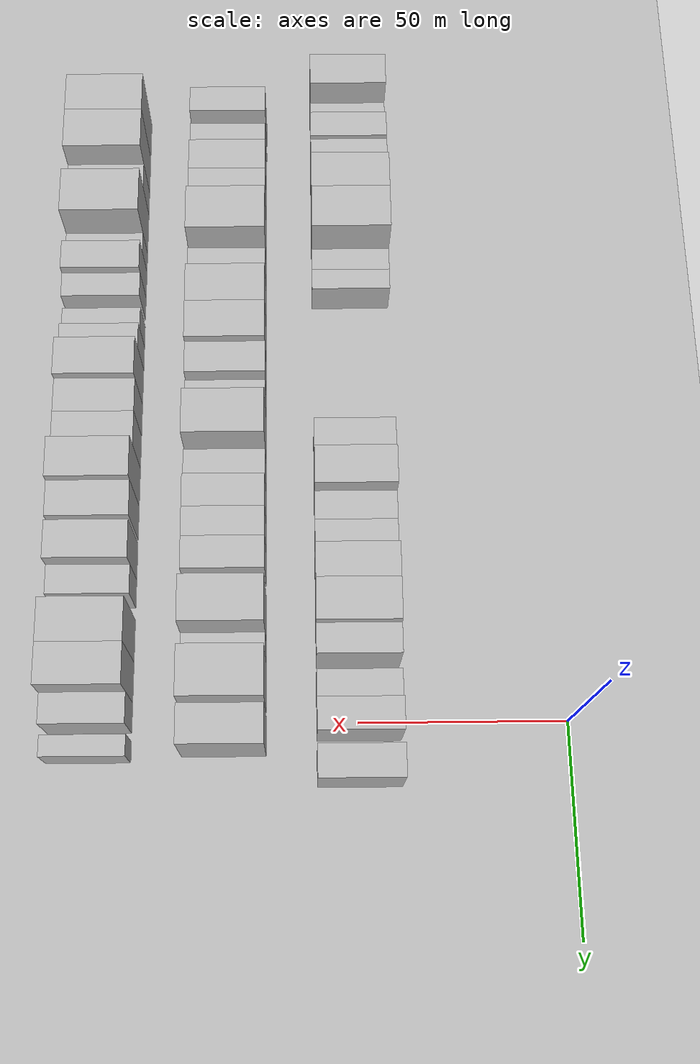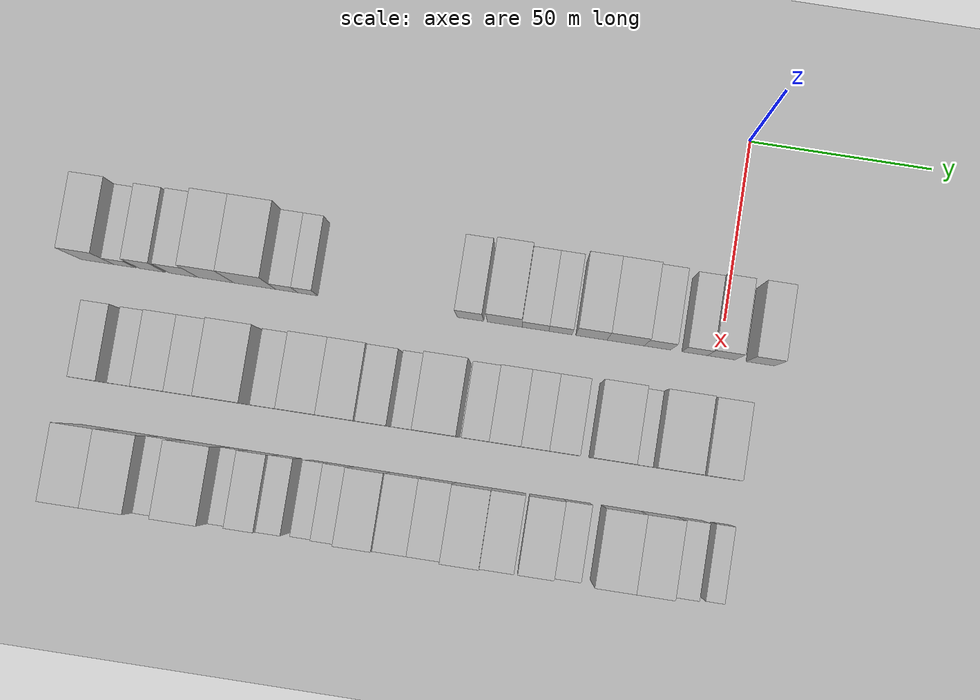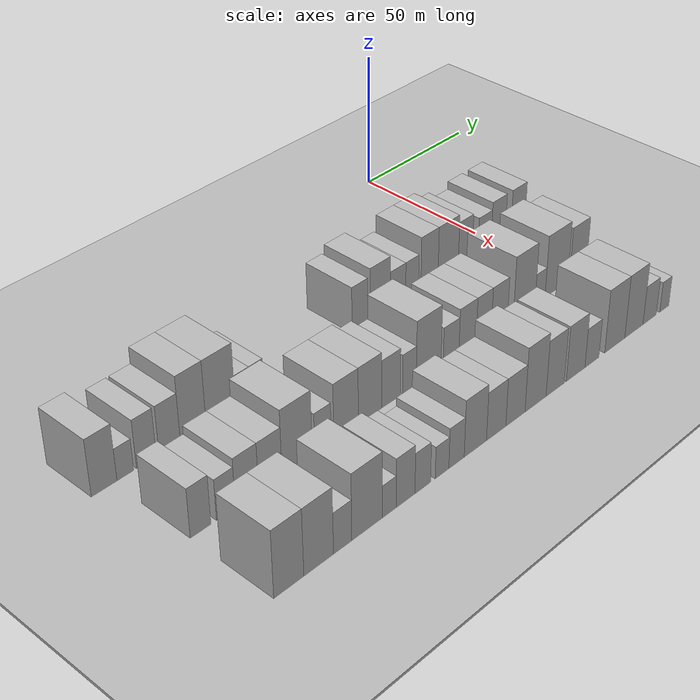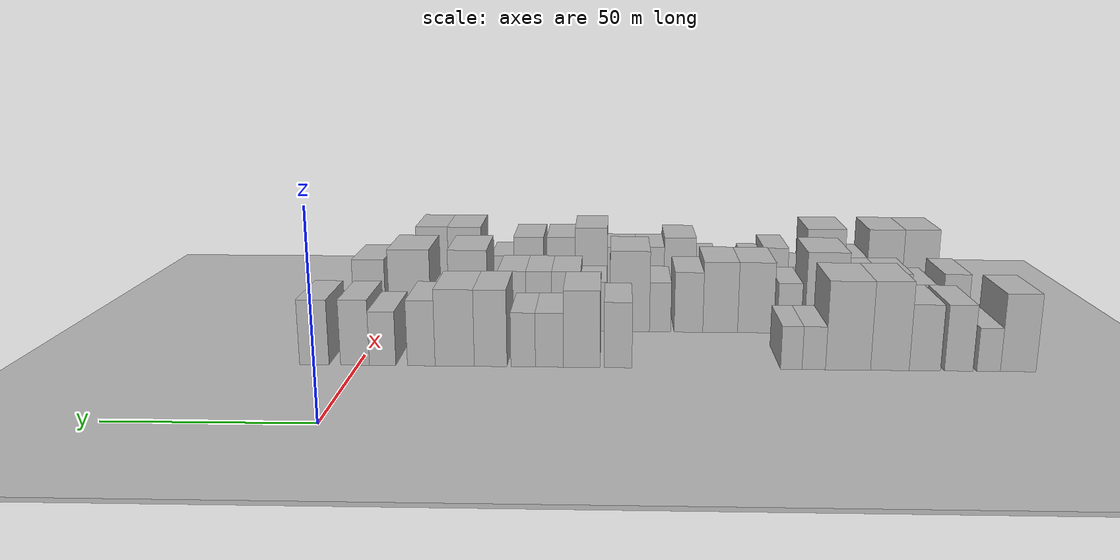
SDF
<sdf version="1.6">
 <world name="default">
  <include><name>ground_plane_1</name><uri>model://HANNAS_ground_plane</uri></include>
  <include>
   <name>ground_plane_2</name>
   <uri>model://HANNAS_ground_plane</uri>
   <pose>100 0 0  0 0 0</pose>
  </include>
  <model name="building_19">
   <static>1</static>
   <pose>50.0000 -170.1867 0 0.000000 0.000000 0.000000</pose>
   <link name="link">
    <pose>0 0 10.50 0 0 0</pose>
    <collision name="collision"><geometry><box><size>20.0000 9.0140 21.0000</size></box></geometry></collision>
    <visual name="visual">
     <cast_shadows>0</cast_shadows>
     <geometry><box><size>20.0000 9.0140 21.0000</size></box></geometry>
     <material>
      <script>
       <uri>model://HANNAS_wall/materials/scripts</uri>
       <uri>model://HANNAS_wall/materials/textures</uri>
       <name>vrc/HANNAS_wall</name>
      </script>
     </material>
    </visual>
   </link>
  </model>
  <model name="building_20">
   <static>1</static>
   <pose>50.0000 -162.6998 0 0.000000 0.000000 0.000000</pose>
   <link name="link">
    <pose>0 0 6.00 0 0 0</pose>
    <collision name="collision"><geometry><box><size>20.0000 5.9597 12.0000</size></box></geometry></collision>
    <visual name="visual">
     <cast_shadows>0</cast_shadows>
     <geometry><box><size>20.0000 5.9597 12.0000</size></box></geometry>
     <material>
      <script>
       <uri>model://HANNAS_wall/materials/scripts</uri>
       <uri>model://HANNAS_wall/materials/textures</uri>
       <name>vrc/HANNAS_wall</name>
      </script>
     </material>
    </visual>
   </link>
  </model>
  <model name="building_21">
   <static>1</static>
   <pose>50.0000 -155.1052 0 0.000000 0.000000 0.000000</pose>
   <link name="link">
    <pose>0 0 9.00 0 0 0</pose>
    <collision name="collision"><geometry><box><size>20.0000 7.2296 18.0000</size></box></geometry></collision>
    <visual name="visual">
     <cast_shadows>0</cast_shadows>
     <geometry><box><size>20.0000 7.2296 18.0000</size></box></geometry>
     <material>
      <script>
       <uri>model://HANNAS_wall/materials/scripts</uri>
       <uri>model://HANNAS_wall/materials/textures</uri>
       <name>vrc/HANNAS_wall</name>
      </script>
     </material>
    </visual>
   </link>
  </model>
  <model name="building_22">
   <static>1</static>
   <pose>50.0000 -146.5102 0 0.000000 0.000000 0.000000</pose>
   <link name="link">
    <pose>0 0 9.00 0 0 0</pose>
    <collision name="collision"><geometry><box><size>20.0000 7.9605 18.0000</size></box></geometry></collision>
    <visual name="visual">
     <cast_shadows>0</cast_shadows>
     <geometry><box><size>20.0000 7.9605 18.0000</size></box></geometry>
     <material>
      <script>
       <uri>model://HANNAS_wall/materials/scripts</uri>
       <uri>model://HANNAS_wall/materials/textures</uri>
       <name>vrc/HANNAS_wall</name>
      </script>
     </material>
    </visual>
   </link>
  </model>
  <model name="building_23">
   <static>1</static>
   <pose>50.0000 -137.6101 0 0.000000 0.000000 0.000000</pose>
   <link name="link">
    <pose>0 0 12.00 0 0 0</pose>
    <collision name="collision"><geometry><box><size>20.0000 9.8397 24.0000</size></box></geometry></collision>
    <visual name="visual">
     <cast_shadows>0</cast_shadows>
     <geometry><box><size>20.0000 9.8397 24.0000</size></box></geometry>
     <material>
      <script>
       <uri>model://HANNAS_wall/materials/scripts</uri>
       <uri>model://HANNAS_wall/materials/textures</uri>
       <name>vrc/HANNAS_wall</name>
      </script>
     </material>
    </visual>
   </link>
  </model>
  <model name="building_24">
   <static>1</static>
   <pose>50.0000 -126.9382 0 0.000000 0.000000 0.000000</pose>
   <link name="link">
    <pose>0 0 12.00 0 0 0</pose>
    <collision name="collision"><geometry><box><size>20.0000 11.5041 24.0000</size></box></geometry></collision>
    <visual name="visual">
     <cast_shadows>0</cast_shadows>
     <geometry><box><size>20.0000 11.5041 24.0000</size></box></geometry>
     <material>
      <script>
       <uri>model://HANNAS_wall/materials/scripts</uri>
       <uri>model://HANNAS_wall/materials/textures</uri>
       <name>vrc/HANNAS_wall</name>
      </script>
     </material>
    </visual>
   </link>
  </model>
  <model name="building_25">
   <static>1</static>
   <pose>50.0000 -118.1877 0 0.000000 0.000000 0.000000</pose>
   <link name="link">
    <pose>0 0 6.00 0 0 0</pose>
    <collision name="collision"><geometry><box><size>20.0000 5.9968 12.0000</size></box></geometry></collision>
    <visual name="visual">
     <cast_shadows>0</cast_shadows>
     <geometry><box><size>20.0000 5.9968 12.0000</size></box></geometry>
     <material>
      <script>
       <uri>model://HANNAS_wall/materials/scripts</uri>
       <uri>model://HANNAS_wall/materials/textures</uri>
       <name>vrc/HANNAS_wall</name>
      </script>
     </material>
    </visual>
   </link>
  </model>
  <model name="building_26">
   <static>1</static>
   <pose>50.0000 -112.4463 0 0.000000 0.000000 0.000000</pose>
   <link name="link">
    <pose>0 0 6.00 0 0 0</pose>
    <collision name="collision"><geometry><box><size>20.0000 5.4861 12.0000</size></box></geometry></collision>
    <visual name="visual">
     <cast_shadows>0</cast_shadows>
     <geometry><box><size>20.0000 5.4861 12.0000</size></box></geometry>
     <material>
      <script>
       <uri>model://HANNAS_wall/materials/scripts</uri>
       <uri>model://HANNAS_wall/materials/textures</uri>
       <name>vrc/HANNAS_wall</name>
      </script>
     </material>
    </visual>
   </link>
  </model>
  <model name="building_27">
   <static>1</static>
   <pose>50.0000 -67.8716 0 0.000000 0.000000 0.000000</pose>
   <link name="link">
    <pose>0 0 9.00 0 0 0</pose>
    <collision name="collision"><geometry><box><size>20.0000 7.2211 18.0000</size></box></geometry></collision>
    <visual name="visual">
     <cast_shadows>0</cast_shadows>
     <geometry><box><size>20.0000 7.2211 18.0000</size></box></geometry>
     <material>
      <script>
       <uri>model://HANNAS_wall/materials/scripts</uri>
       <uri>model://HANNAS_wall/materials/textures</uri>
       <name>vrc/HANNAS_wall</name>
      </script>
     </material>
    </visual>
   </link>
  </model>
  <model name="building_28">
   <static>1</static>
   <pose>50.0000 -58.4912 0 0.000000 0.000000 0.000000</pose>
   <link name="link">
    <pose>0 0 10.50 0 0 0</pose>
    <collision name="collision"><geometry><box><size>20.0000 9.5399 21.0000</size></box></geometry></collision>
    <visual name="visual">
     <cast_shadows>0</cast_shadows>
     <geometry><box><size>20.0000 9.5399 21.0000</size></box></geometry>
     <material>
      <script>
       <uri>model://HANNAS_wall/materials/scripts</uri>
       <uri>model://HANNAS_wall/materials/textures</uri>
       <name>vrc/HANNAS_wall</name>
      </script>
     </material>
    </visual>
   </link>
  </model>
  <model name="building_29">
   <static>1</static>
   <pose>50.0000 -50.1089 0 0.000000 0.000000 0.000000</pose>
   <link name="link">
    <pose>0 0 7.50 0 0 0</pose>
    <collision name="collision"><geometry><box><size>20.0000 7.2247 15.0000</size></box></geometry></collision>
    <visual name="visual">
     <cast_shadows>0</cast_shadows>
     <geometry><box><size>20.0000 7.2247 15.0000</size></box></geometry>
     <material>
      <script>
       <uri>model://HANNAS_wall/materials/scripts</uri>
       <uri>model://HANNAS_wall/materials/textures</uri>
       <name>vrc/HANNAS_wall</name>
      </script>
     </material>
    </visual>
   </link>
  </model>
  <model name="building_30">
   <static>1</static>
   <pose>50.0000 -43.3192 0 0.000000 0.000000 0.000000</pose>
   <link name="link">
    <pose>0 0 7.50 0 0 0</pose>
    <collision name="collision"><geometry><box><size>20.0000 6.3545 15.0000</size></box></geometry></collision>
    <visual name="visual">
     <cast_shadows>0</cast_shadows>
     <geometry><box><size>20.0000 6.3545 15.0000</size></box></geometry>
     <material>
      <script>
       <uri>model://HANNAS_wall/materials/scripts</uri>
       <uri>model://HANNAS_wall/materials/textures</uri>
       <name>vrc/HANNAS_wall</name>
      </script>
     </material>
    </visual>
   </link>
  </model>
  <model name="building_31">
   <static>1</static>
   <pose>50.0000 -34.8919 0 0.000000 0.000000 0.000000</pose>
   <link name="link">
    <pose>0 0 10.50 0 0 0</pose>
    <collision name="collision"><geometry><box><size>20.0000 8.5002 21.0000</size></box></geometry></collision>
    <visual name="visual">
     <cast_shadows>0</cast_shadows>
     <geometry><box><size>20.0000 8.5002 21.0000</size></box></geometry>
     <material>
      <script>
       <uri>model://HANNAS_wall/materials/scripts</uri>
       <uri>model://HANNAS_wall/materials/textures</uri>
       <name>vrc/HANNAS_wall</name>
      </script>
     </material>
    </visual>
   </link>
  </model>
  <model name="building_32">
   <static>1</static>
   <pose>50.0000 -25.5325 0 0.000000 0.000000 0.000000</pose>
   <link name="link">
    <pose>0 0 10.50 0 0 0</pose>
    <collision name="collision"><geometry><box><size>20.0000 10.2185 21.0000</size></box></geometry></collision>
    <visual name="visual">
     <cast_shadows>0</cast_shadows>
     <geometry><box><size>20.0000 10.2185 21.0000</size></box></geometry>
     <material>
      <script>
       <uri>model://HANNAS_wall/materials/scripts</uri>
       <uri>model://HANNAS_wall/materials/textures</uri>
       <name>vrc/HANNAS_wall</name>
      </script>
     </material>
    </visual>
   </link>
  </model>
  <model name="building_33">
   <static>1</static>
   <pose>50.0000 -16.8051 0 0.000000 0.000000 0.000000</pose>
   <link name="link">
    <pose>0 0 9.00 0 0 0</pose>
    <collision name="collision"><geometry><box><size>20.0000 7.2364 18.0000</size></box></geometry></collision>
    <visual name="visual">
     <cast_shadows>0</cast_shadows>
     <geometry><box><size>20.0000 7.2364 18.0000</size></box></geometry>
     <material>
      <script>
       <uri>model://HANNAS_wall/materials/scripts</uri>
       <uri>model://HANNAS_wall/materials/textures</uri>
       <name>vrc/HANNAS_wall</name>
      </script>
     </material>
    </visual>
   </link>
  </model>
  <model name="building_34">
   <static>1</static>
   <pose>50.0000 -6.7239 0 0.000000 0.000000 0.000000</pose>
   <link name="link">
    <pose>0 0 7.50 0 0 0</pose>
    <collision name="collision"><geometry><box><size>20.0000 6.9261 15.0000</size></box></geometry></collision>
    <visual name="visual">
     <cast_shadows>0</cast_shadows>
     <geometry><box><size>20.0000 6.9261 15.0000</size></box></geometry>
     <material>
      <script>
       <uri>model://HANNAS_wall/materials/scripts</uri>
       <uri>model://HANNAS_wall/materials/textures</uri>
       <name>vrc/HANNAS_wall</name>
      </script>
     </material>
    </visual>
   </link>
  </model>
  <model name="building_35">
   <static>1</static>
   <pose>50.0000 0.5221 0 0.000000 0.000000 0.000000</pose>
   <link name="link">
    <pose>0 0 9.00 0 0 0</pose>
    <collision name="collision"><geometry><box><size>20.0000 7.5658 18.0000</size></box></geometry></collision>
    <visual name="visual">
     <cast_shadows>0</cast_shadows>
     <geometry><box><size>20.0000 7.5658 18.0000</size></box></geometry>
     <material>
      <script>
       <uri>model://HANNAS_wall/materials/scripts</uri>
       <uri>model://HANNAS_wall/materials/textures</uri>
       <name>vrc/HANNAS_wall</name>
      </script>
     </material>
    </visual>
   </link>
  </model>
  <model name="building_36">
   <static>1</static>
   <pose>50.0000 11.1722 0 0.000000 0.000000 0.000000</pose>
   <link name="link">
    <pose>0 0 9.00 0 0 0</pose>
    <collision name="collision"><geometry><box><size>20.0000 7.7345 18.0000</size></box></geometry></collision>
    <visual name="visual">
     <cast_shadows>0</cast_shadows>
     <geometry><box><size>20.0000 7.7345 18.0000</size></box></geometry>
     <material>
      <script>
       <uri>model://HANNAS_wall/materials/scripts</uri>
       <uri>model://HANNAS_wall/materials/textures</uri>
       <name>vrc/HANNAS_wall</name>
      </script>
     </material>
    </visual>
   </link>
  </model>
  <model name="building_93">
   <static>1</static>
   <pose>82.0000 -163.1532 0 0.000000 0.000000 0.000000</pose>
   <link name="link">
    <pose>0 0 9.00 0 0 0</pose>
    <collision name="collision"><geometry><box><size>20.0000 7.3588 18.0000</size></box></geometry></collision>
    <visual name="visual">
     <cast_shadows>0</cast_shadows>
     <geometry><box><size>20.0000 7.3588 18.0000</size></box></geometry>
     <material>
      <script>
       <uri>model://HANNAS_wall/materials/scripts</uri>
       <uri>model://HANNAS_wall/materials/textures</uri>
       <name>vrc/HANNAS_wall</name>
      </script>
     </material>
    </visual>
   </link>
  </model>
  <model name="building_94">
   <static>1</static>
   <pose>82.0000 -154.0242 0 0.000000 0.000000 0.000000</pose>
   <link name="link">
    <pose>0 0 7.50 0 0 0</pose>
    <collision name="collision"><geometry><box><size>20.0000 6.8991 15.0000</size></box></geometry></collision>
    <visual name="visual">
     <cast_shadows>0</cast_shadows>
     <geometry><box><size>20.0000 6.8991 15.0000</size></box></geometry>
     <material>
      <script>
       <uri>model://HANNAS_wall/materials/scripts</uri>
       <uri>model://HANNAS_wall/materials/textures</uri>
       <name>vrc/HANNAS_wall</name>
      </script>
     </material>
    </visual>
   </link>
  </model>
  <model name="building_95">
   <static>1</static>
   <pose>82.0000 -146.2384 0 0.000000 0.000000 0.000000</pose>
   <link name="link">
    <pose>0 0 9.00 0 0 0</pose>
    <collision name="collision"><geometry><box><size>20.0000 8.6725 18.0000</size></box></geometry></collision>
    <visual name="visual">
     <cast_shadows>0</cast_shadows>
     <geometry><box><size>20.0000 8.6725 18.0000</size></box></geometry>
     <material>
      <script>
       <uri>model://HANNAS_wall/materials/scripts</uri>
       <uri>model://HANNAS_wall/materials/textures</uri>
       <name>vrc/HANNAS_wall</name>
      </script>
     </material>
    </visual>
   </link>
  </model>
  <model name="building_96">
   <static>1</static>
   <pose>82.0000 -137.4107 0 0.000000 0.000000 0.000000</pose>
   <link name="link">
    <pose>0 0 9.00 0 0 0</pose>
    <collision name="collision"><geometry><box><size>20.0000 8.9829 18.0000</size></box></geometry></collision>
    <visual name="visual">
     <cast_shadows>0</cast_shadows>
     <geometry><box><size>20.0000 8.9829 18.0000</size></box></geometry>
     <material>
      <script>
       <uri>model://HANNAS_wall/materials/scripts</uri>
       <uri>model://HANNAS_wall/materials/textures</uri>
       <name>vrc/HANNAS_wall</name>
      </script>
     </material>
    </visual>
   </link>
  </model>
  <model name="building_97">
   <static>1</static>
   <pose>82.0000 -126.9958 0 0.000000 0.000000 0.000000</pose>
   <link name="link">
    <pose>0 0 12.00 0 0 0</pose>
    <collision name="collision"><geometry><box><size>20.0000 11.8469 24.0000</size></box></geometry></collision>
    <visual name="visual">
     <cast_shadows>0</cast_shadows>
     <geometry><box><size>20.0000 11.8469 24.0000</size></box></geometry>
     <material>
      <script>
       <uri>model://HANNAS_wall/materials/scripts</uri>
       <uri>model://HANNAS_wall/materials/textures</uri>
       <name>vrc/HANNAS_wall</name>
      </script>
     </material>
    </visual>
   </link>
  </model>
  <model name="building_98">
   <static>1</static>
   <pose>82.0000 -116.7042 0 0.000000 0.000000 0.000000</pose>
   <link name="link">
    <pose>0 0 7.50 0 0 0</pose>
    <collision name="collision"><geometry><box><size>20.0000 6.7363 15.0000</size></box></geometry></collision>
    <visual name="visual">
     <cast_shadows>0</cast_shadows>
     <geometry><box><size>20.0000 6.7363 15.0000</size></box></geometry>
     <material>
      <script>
       <uri>model://HANNAS_wall/materials/scripts</uri>
       <uri>model://HANNAS_wall/materials/textures</uri>
       <name>vrc/HANNAS_wall</name>
      </script>
     </material>
    </visual>
   </link>
  </model>
  <model name="building_99">
   <static>1</static>
   <pose>82.0000 -107.2248 0 0.000000 0.000000 0.000000</pose>
   <link name="link">
    <pose>0 0 10.50 0 0 0</pose>
    <collision name="collision"><geometry><box><size>20.0000 10.2227 21.0000</size></box></geometry></collision>
    <visual name="visual">
     <cast_shadows>0</cast_shadows>
     <geometry><box><size>20.0000 10.2227 21.0000</size></box></geometry>
     <material>
      <script>
       <uri>model://HANNAS_wall/materials/scripts</uri>
       <uri>model://HANNAS_wall/materials/textures</uri>
       <name>vrc/HANNAS_wall</name>
      </script>
     </material>
    </visual>
   </link>
  </model>
  <model name="building_100">
   <static>1</static>
   <pose>82.0000 -97.1668 0 0.000000 0.000000 0.000000</pose>
   <link name="link">
    <pose>0 0 10.50 0 0 0</pose>
    <collision name="collision"><geometry><box><size>20.0000 9.8931 21.0000</size></box></geometry></collision>
    <visual name="visual">
     <cast_shadows>0</cast_shadows>
     <geometry><box><size>20.0000 9.8931 21.0000</size></box></geometry>
     <material>
      <script>
       <uri>model://HANNAS_wall/materials/scripts</uri>
       <uri>model://HANNAS_wall/materials/textures</uri>
       <name>vrc/HANNAS_wall</name>
      </script>
     </material>
    </visual>
   </link>
  </model>
  <model name="building_101">
   <static>1</static>
   <pose>82.0000 -88.1514 0 0.000000 0.000000 0.000000</pose>
   <link name="link">
    <pose>0 0 9.00 0 0 0</pose>
    <collision name="collision"><geometry><box><size>20.0000 8.1377 18.0000</size></box></geometry></collision>
    <visual name="visual">
     <cast_shadows>0</cast_shadows>
     <geometry><box><size>20.0000 8.1377 18.0000</size></box></geometry>
     <material>
      <script>
       <uri>model://HANNAS_wall/materials/scripts</uri>
       <uri>model://HANNAS_wall/materials/textures</uri>
       <name>vrc/HANNAS_wall</name>
      </script>
     </material>
    </visual>
   </link>
  </model>
  <model name="building_102">
   <static>1</static>
   <pose>82.0000 -80.0522 0 0.000000 0.000000 0.000000</pose>
   <link name="link">
    <pose>0 0 7.50 0 0 0</pose>
    <collision name="collision"><geometry><box><size>20.0000 6.0607 15.0000</size></box></geometry></collision>
    <visual name="visual">
     <cast_shadows>0</cast_shadows>
     <geometry><box><size>20.0000 6.0607 15.0000</size></box></geometry>
     <material>
      <script>
       <uri>model://HANNAS_wall/materials/scripts</uri>
       <uri>model://HANNAS_wall/materials/textures</uri>
       <name>vrc/HANNAS_wall</name>
      </script>
     </material>
    </visual>
   </link>
  </model>
  <model name="building_103">
   <static>1</static>
   <pose>82.0000 -71.3800 0 0.000000 0.000000 0.000000</pose>
   <link name="link">
    <pose>0 0 12.00 0 0 0</pose>
    <collision name="collision"><geometry><box><size>20.0000 11.2838 24.0000</size></box></geometry></collision>
    <visual name="visual">
     <cast_shadows>0</cast_shadows>
     <geometry><box><size>20.0000 11.2838 24.0000</size></box></geometry>
     <material>
      <script>
       <uri>model://HANNAS_wall/materials/scripts</uri>
       <uri>model://HANNAS_wall/materials/textures</uri>
       <name>vrc/HANNAS_wall</name>
      </script>
     </material>
    </visual>
   </link>
  </model>
  <model name="building_104">
   <static>1</static>
   <pose>82.0000 -61.0499 0 0.000000 0.000000 0.000000</pose>
   <link name="link">
    <pose>0 0 7.50 0 0 0</pose>
    <collision name="collision"><geometry><box><size>20.0000 7.3764 15.0000</size></box></geometry></collision>
    <visual name="visual">
     <cast_shadows>0</cast_shadows>
     <geometry><box><size>20.0000 7.3764 15.0000</size></box></geometry>
     <material>
      <script>
       <uri>model://HANNAS_wall/materials/scripts</uri>
       <uri>model://HANNAS_wall/materials/textures</uri>
       <name>vrc/HANNAS_wall</name>
      </script>
     </material>
    </visual>
   </link>
  </model>
  <model name="building_105">
   <static>1</static>
   <pose>82.0000 -53.2442 0 0.000000 0.000000 0.000000</pose>
   <link name="link">
    <pose>0 0 9.00 0 0 0</pose>
    <collision name="collision"><geometry><box><size>20.0000 8.2350 18.0000</size></box></geometry></collision>
    <visual name="visual">
     <cast_shadows>0</cast_shadows>
     <geometry><box><size>20.0000 8.2350 18.0000</size></box></geometry>
     <material>
      <script>
       <uri>model://HANNAS_wall/materials/scripts</uri>
       <uri>model://HANNAS_wall/materials/textures</uri>
       <name>vrc/HANNAS_wall</name>
      </script>
     </material>
    </visual>
   </link>
  </model>
  <model name="building_106">
   <static>1</static>
   <pose>82.0000 -45.4457 0 0.000000 0.000000 0.000000</pose>
   <link name="link">
    <pose>0 0 9.00 0 0 0</pose>
    <collision name="collision"><geometry><box><size>20.0000 7.3619 18.0000</size></box></geometry></collision>
    <visual name="visual">
     <cast_shadows>0</cast_shadows>
     <geometry><box><size>20.0000 7.3619 18.0000</size></box></geometry>
     <material>
      <script>
       <uri>model://HANNAS_wall/materials/scripts</uri>
       <uri>model://HANNAS_wall/materials/textures</uri>
       <name>vrc/HANNAS_wall</name>
      </script>
     </material>
    </visual>
   </link>
  </model>
  <model name="building_107">
   <static>1</static>
   <pose>82.0000 -37.7706 0 0.000000 0.000000 0.000000</pose>
   <link name="link">
    <pose>0 0 9.00 0 0 0</pose>
    <collision name="collision"><geometry><box><size>20.0000 7.9883 18.0000</size></box></geometry></collision>
    <visual name="visual">
     <cast_shadows>0</cast_shadows>
     <geometry><box><size>20.0000 7.9883 18.0000</size></box></geometry>
     <material>
      <script>
       <uri>model://HANNAS_wall/materials/scripts</uri>
       <uri>model://HANNAS_wall/materials/textures</uri>
       <name>vrc/HANNAS_wall</name>
      </script>
     </material>
    </visual>
   </link>
  </model>
  <model name="building_108">
   <static>1</static>
   <pose>82.0000 -25.2174 0 0.000000 0.000000 0.000000</pose>
   <link name="link">
    <pose>0 0 12.00 0 0 0</pose>
    <collision name="collision"><geometry><box><size>20.0000 11.1182 24.0000</size></box></geometry></collision>
    <visual name="visual">
     <cast_shadows>0</cast_shadows>
     <geometry><box><size>20.0000 11.1182 24.0000</size></box></geometry>
     <material>
      <script>
       <uri>model://HANNAS_wall/materials/scripts</uri>
       <uri>model://HANNAS_wall/materials/textures</uri>
       <name>vrc/HANNAS_wall</name>
      </script>
     </material>
    </visual>
   </link>
  </model>
  <model name="building_109">
   <static>1</static>
   <pose>82.0000 -17.0525 0 0.000000 0.000000 0.000000</pose>
   <link name="link">
    <pose>0 0 6.00 0 0 0</pose>
    <collision name="collision"><geometry><box><size>20.0000 5.2115 12.0000</size></box></geometry></collision>
    <visual name="visual">
     <cast_shadows>0</cast_shadows>
     <geometry><box><size>20.0000 5.2115 12.0000</size></box></geometry>
     <material>
      <script>
       <uri>model://HANNAS_wall/materials/scripts</uri>
       <uri>model://HANNAS_wall/materials/textures</uri>
       <name>vrc/HANNAS_wall</name>
      </script>
     </material>
    </visual>
   </link>
  </model>
  <model name="building_110">
   <static>1</static>
   <pose>82.0000 -8.4804 0 0.000000 0.000000 0.000000</pose>
   <link name="link">
    <pose>0 0 12.00 0 0 0</pose>
    <collision name="collision"><geometry><box><size>20.0000 11.9326 24.0000</size></box></geometry></collision>
    <visual name="visual">
     <cast_shadows>0</cast_shadows>
     <geometry><box><size>20.0000 11.9326 24.0000</size></box></geometry>
     <material>
      <script>
       <uri>model://HANNAS_wall/materials/scripts</uri>
       <uri>model://HANNAS_wall/materials/textures</uri>
       <name>vrc/HANNAS_wall</name>
      </script>
     </material>
    </visual>
   </link>
  </model>
  <model name="building_111">
   <static>1</static>
   <pose>82.0000 3.0935 0 0.000000 0.000000 0.000000</pose>
   <link name="link">
    <pose>0 0 10.50 0 0 0</pose>
    <collision name="collision"><geometry><box><size>20.0000 9.2154 21.0000</size></box></geometry></collision>
    <visual name="visual">
     <cast_shadows>0</cast_shadows>
     <geometry><box><size>20.0000 9.2154 21.0000</size></box></geometry>
     <material>
      <script>
       <uri>model://HANNAS_wall/materials/scripts</uri>
       <uri>model://HANNAS_wall/materials/textures</uri>
       <name>vrc/HANNAS_wall</name>
      </script>
     </material>
    </visual>
   </link>
  </model>
  <model name="building_171">
   <static>1</static>
   <pose>114.0000 -161.4324 0 0.000000 0.000000 0.000000</pose>
   <link name="link">
    <pose>0 0 12.00 0 0 0</pose>
    <collision name="collision"><geometry><box><size>20.0000 10.7684 24.0000</size></box></geometry></collision>
    <visual name="visual">
     <cast_shadows>0</cast_shadows>
     <geometry><box><size>20.0000 10.7684 24.0000</size></box></geometry>
     <material>
      <script>
       <uri>model://HANNAS_wall/materials/scripts</uri>
       <uri>model://HANNAS_wall/materials/textures</uri>
       <name>vrc/HANNAS_wall</name>
      </script>
     </material>
    </visual>
   </link>
  </model>
  <model name="building_172">
   <static>1</static>
   <pose>114.0000 -150.5768 0 0.000000 0.000000 0.000000</pose>
   <link name="link">
    <pose>0 0 12.00 0 0 0</pose>
    <collision name="collision"><geometry><box><size>20.0000 10.9427 24.0000</size></box></geometry></collision>
    <visual name="visual">
     <cast_shadows>0</cast_shadows>
     <geometry><box><size>20.0000 10.9427 24.0000</size></box></geometry>
     <material>
      <script>
       <uri>model://HANNAS_wall/materials/scripts</uri>
       <uri>model://HANNAS_wall/materials/textures</uri>
       <name>vrc/HANNAS_wall</name>
      </script>
     </material>
    </visual>
   </link>
  </model>
  <model name="building_173">
   <static>1</static>
   <pose>114.0000 -141.6539 0 0.000000 0.000000 0.000000</pose>
   <link name="link">
    <pose>0 0 7.50 0 0 0</pose>
    <collision name="collision"><geometry><box><size>20.0000 6.9032 15.0000</size></box></geometry></collision>
    <visual name="visual">
     <cast_shadows>0</cast_shadows>
     <geometry><box><size>20.0000 6.9032 15.0000</size></box></geometry>
     <material>
      <script>
       <uri>model://HANNAS_wall/materials/scripts</uri>
       <uri>model://HANNAS_wall/materials/textures</uri>
       <name>vrc/HANNAS_wall</name>
      </script>
     </material>
    </visual>
   </link>
  </model>
  <model name="building_174">
   <static>1</static>
   <pose>114.0000 -132.2477 0 0.000000 0.000000 0.000000</pose>
   <link name="link">
    <pose>0 0 12.00 0 0 0</pose>
    <collision name="collision"><geometry><box><size>20.0000 11.9091 24.0000</size></box></geometry></collision>
    <visual name="visual">
     <cast_shadows>0</cast_shadows>
     <geometry><box><size>20.0000 11.9091 24.0000</size></box></geometry>
     <material>
      <script>
       <uri>model://HANNAS_wall/materials/scripts</uri>
       <uri>model://HANNAS_wall/materials/textures</uri>
       <name>vrc/HANNAS_wall</name>
      </script>
     </material>
    </visual>
   </link>
  </model>
  <model name="building_175">
   <static>1</static>
   <pose>114.0000 -123.5466 0 0.000000 0.000000 0.000000</pose>
   <link name="link">
    <pose>0 0 6.00 0 0 0</pose>
    <collision name="collision"><geometry><box><size>20.0000 5.4932 12.0000</size></box></geometry></collision>
    <visual name="visual">
     <cast_shadows>0</cast_shadows>
     <geometry><box><size>20.0000 5.4932 12.0000</size></box></geometry>
     <material>
      <script>
       <uri>model://HANNAS_wall/materials/scripts</uri>
       <uri>model://HANNAS_wall/materials/textures</uri>
       <name>vrc/HANNAS_wall</name>
      </script>
     </material>
    </visual>
   </link>
  </model>
  <model name="building_176">
   <static>1</static>
   <pose>114.0000 -116.9680 0 0.000000 0.000000 0.000000</pose>
   <link name="link">
    <pose>0 0 9.00 0 0 0</pose>
    <collision name="collision"><geometry><box><size>20.0000 7.6639 18.0000</size></box></geometry></collision>
    <visual name="visual">
     <cast_shadows>0</cast_shadows>
     <geometry><box><size>20.0000 7.6639 18.0000</size></box></geometry>
     <material>
      <script>
       <uri>model://HANNAS_wall/materials/scripts</uri>
       <uri>model://HANNAS_wall/materials/textures</uri>
       <name>vrc/HANNAS_wall</name>
      </script>
     </material>
    </visual>
   </link>
  </model>
  <model name="building_177">
   <static>1</static>
   <pose>114.0000 -109.9171 0 0.000000 0.000000 0.000000</pose>
   <link name="link">
    <pose>0 0 7.50 0 0 0</pose>
    <collision name="collision"><geometry><box><size>20.0000 6.4380 15.0000</size></box></geometry></collision>
    <visual name="visual">
     <cast_shadows>0</cast_shadows>
     <geometry><box><size>20.0000 6.4380 15.0000</size></box></geometry>
     <material>
      <script>
       <uri>model://HANNAS_wall/materials/scripts</uri>
       <uri>model://HANNAS_wall/materials/textures</uri>
       <name>vrc/HANNAS_wall</name>
      </script>
     </material>
    </visual>
   </link>
  </model>
  <model name="building_178">
   <static>1</static>
   <pose>114.0000 -101.8041 0 0.000000 0.000000 0.000000</pose>
   <link name="link">
    <pose>0 0 6.00 0 0 0</pose>
    <collision name="collision"><geometry><box><size>20.0000 5.7878 12.0000</size></box></geometry></collision>
    <visual name="visual">
     <cast_shadows>0</cast_shadows>
     <geometry><box><size>20.0000 5.7878 12.0000</size></box></geometry>
     <material>
      <script>
       <uri>model://HANNAS_wall/materials/scripts</uri>
       <uri>model://HANNAS_wall/materials/textures</uri>
       <name>vrc/HANNAS_wall</name>
      </script>
     </material>
    </visual>
   </link>
  </model>
  <model name="building_179">
   <static>1</static>
   <pose>114.0000 -95.6118 0 0.000000 0.000000 0.000000</pose>
   <link name="link">
    <pose>0 0 7.50 0 0 0</pose>
    <collision name="collision"><geometry><box><size>20.0000 6.5968 15.0000</size></box></geometry></collision>
    <visual name="visual">
     <cast_shadows>0</cast_shadows>
     <geometry><box><size>20.0000 6.5968 15.0000</size></box></geometry>
     <material>
      <script>
       <uri>model://HANNAS_wall/materials/scripts</uri>
       <uri>model://HANNAS_wall/materials/textures</uri>
       <name>vrc/HANNAS_wall</name>
      </script>
     </material>
    </visual>
   </link>
  </model>
  <model name="building_180">
   <static>1</static>
   <pose>114.0000 -87.4044 0 0.000000 0.000000 0.000000</pose>
   <link name="link">
    <pose>0 0 10.50 0 0 0</pose>
    <collision name="collision"><geometry><box><size>20.0000 9.8180 21.0000</size></box></geometry></collision>
    <visual name="visual">
     <cast_shadows>0</cast_shadows>
     <geometry><box><size>20.0000 9.8180 21.0000</size></box></geometry>
     <material>
      <script>
       <uri>model://HANNAS_wall/materials/scripts</uri>
       <uri>model://HANNAS_wall/materials/textures</uri>
       <name>vrc/HANNAS_wall</name>
      </script>
     </material>
    </visual>
   </link>
  </model>
  <model name="building_181">
   <static>1</static>
   <pose>114.0000 -78.1175 0 0.000000 0.000000 0.000000</pose>
   <link name="link">
    <pose>0 0 9.00 0 0 0</pose>
    <collision name="collision"><geometry><box><size>20.0000 8.7558 18.0000</size></box></geometry></collision>
    <visual name="visual">
     <cast_shadows>0</cast_shadows>
     <geometry><box><size>20.0000 8.7558 18.0000</size></box></geometry>
     <material>
      <script>
       <uri>model://HANNAS_wall/materials/scripts</uri>
       <uri>model://HANNAS_wall/materials/textures</uri>
       <name>vrc/HANNAS_wall</name>
      </script>
     </material>
    </visual>
   </link>
  </model>
  <model name="building_182">
   <static>1</static>
   <pose>114.0000 -69.2981 0 0.000000 0.000000 0.000000</pose>
   <link name="link">
    <pose>0 0 9.00 0 0 0</pose>
    <collision name="collision"><geometry><box><size>20.0000 8.8831 18.0000</size></box></geometry></collision>
    <visual name="visual">
     <cast_shadows>0</cast_shadows>
     <geometry><box><size>20.0000 8.8831 18.0000</size></box></geometry>
     <material>
      <script>
       <uri>model://HANNAS_wall/materials/scripts</uri>
       <uri>model://HANNAS_wall/materials/textures</uri>
       <name>vrc/HANNAS_wall</name>
      </script>
     </material>
    </visual>
   </link>
  </model>
  <model name="building_183">
   <static>1</static>
   <pose>114.0000 -59.8595 0 0.000000 0.000000 0.000000</pose>
   <link name="link">
    <pose>0 0 12.00 0 0 0</pose>
    <collision name="collision"><geometry><box><size>20.0000 9.9941 24.0000</size></box></geometry></collision>
    <visual name="visual">
     <cast_shadows>0</cast_shadows>
     <geometry><box><size>20.0000 9.9941 24.0000</size></box></geometry>
     <material>
      <script>
       <uri>model://HANNAS_wall/materials/scripts</uri>
       <uri>model://HANNAS_wall/materials/textures</uri>
       <name>vrc/HANNAS_wall</name>
      </script>
     </material>
    </visual>
   </link>
  </model>
  <model name="building_184">
   <static>1</static>
   <pose>114.0000 -50.4442 0 0.000000 0.000000 0.000000</pose>
   <link name="link">
    <pose>0 0 10.50 0 0 0</pose>
    <collision name="collision"><geometry><box><size>20.0000 8.8365 21.0000</size></box></geometry></collision>
    <visual name="visual">
     <cast_shadows>0</cast_shadows>
     <geometry><box><size>20.0000 8.8365 21.0000</size></box></geometry>
     <material>
      <script>
       <uri>model://HANNAS_wall/materials/scripts</uri>
       <uri>model://HANNAS_wall/materials/textures</uri>
       <name>vrc/HANNAS_wall</name>
      </script>
     </material>
    </visual>
   </link>
  </model>
  <model name="building_185">
   <static>1</static>
   <pose>114.0000 -40.3677 0 0.000000 0.000000 0.000000</pose>
   <link name="link">
    <pose>0 0 10.50 0 0 0</pose>
    <collision name="collision"><geometry><box><size>20.0000 9.3164 21.0000</size></box></geometry></collision>
    <visual name="visual">
     <cast_shadows>0</cast_shadows>
     <geometry><box><size>20.0000 9.3164 21.0000</size></box></geometry>
     <material>
      <script>
       <uri>model://HANNAS_wall/materials/scripts</uri>
       <uri>model://HANNAS_wall/materials/textures</uri>
       <name>vrc/HANNAS_wall</name>
      </script>
     </material>
    </visual>
   </link>
  </model>
  <model name="building_186">
   <static>1</static>
   <pose>114.0000 -32.1556 0 0.000000 0.000000 0.000000</pose>
   <link name="link">
    <pose>0 0 7.50 0 0 0</pose>
    <collision name="collision"><geometry><box><size>20.0000 7.1079 15.0000</size></box></geometry></collision>
    <visual name="visual">
     <cast_shadows>0</cast_shadows>
     <geometry><box><size>20.0000 7.1079 15.0000</size></box></geometry>
     <material>
      <script>
       <uri>model://HANNAS_wall/materials/scripts</uri>
       <uri>model://HANNAS_wall/materials/textures</uri>
       <name>vrc/HANNAS_wall</name>
      </script>
     </material>
    </visual>
   </link>
  </model>
  <model name="building_187">
   <static>1</static>
   <pose>114.0000 -20.3535 0 0.000000 0.000000 0.000000</pose>
   <link name="link">
    <pose>0 0 12.00 0 0 0</pose>
    <collision name="collision"><geometry><box><size>20.0000 10.4962 24.0000</size></box></geometry></collision>
    <visual name="visual">
     <cast_shadows>0</cast_shadows>
     <geometry><box><size>20.0000 10.4962 24.0000</size></box></geometry>
     <material>
      <script>
       <uri>model://HANNAS_wall/materials/scripts</uri>
       <uri>model://HANNAS_wall/materials/textures</uri>
       <name>vrc/HANNAS_wall</name>
      </script>
     </material>
    </visual>
   </link>
  </model>
  <model name="building_188">
   <static>1</static>
   <pose>114.0000 -10.1994 0 0.000000 0.000000 0.000000</pose>
   <link name="link">
    <pose>0 0 12.00 0 0 0</pose>
    <collision name="collision"><geometry><box><size>20.0000 9.8120 24.0000</size></box></geometry></collision>
    <visual name="visual">
     <cast_shadows>0</cast_shadows>
     <geometry><box><size>20.0000 9.8120 24.0000</size></box></geometry>
     <material>
      <script>
       <uri>model://HANNAS_wall/materials/scripts</uri>
       <uri>model://HANNAS_wall/materials/textures</uri>
       <name>vrc/HANNAS_wall</name>
      </script>
     </material>
    </visual>
   </link>
  </model>
  <model name="building_189">
   <static>1</static>
   <pose>114.0000 -1.6674 0 0.000000 0.000000 0.000000</pose>
   <link name="link">
    <pose>0 0 7.50 0 0 0</pose>
    <collision name="collision"><geometry><box><size>20.0000 7.2521 15.0000</size></box></geometry></collision>
    <visual name="visual">
     <cast_shadows>0</cast_shadows>
     <geometry><box><size>20.0000 7.2521 15.0000</size></box></geometry>
     <material>
      <script>
       <uri>model://HANNAS_wall/materials/scripts</uri>
       <uri>model://HANNAS_wall/materials/textures</uri>
       <name>vrc/HANNAS_wall</name>
      </script>
     </material>
    </visual>
   </link>
  </model>
  <model name="building_190">
   <static>1</static>
   <pose>114.0000 6.4635 0 0.000000 0.000000 0.000000</pose>
   <link name="link">
    <pose>0 0 6.00 0 0 0</pose>
    <collision name="collision"><geometry><box><size>20.0000 5.0097 12.0000</size></box></geometry></collision>
    <visual name="visual">
     <cast_shadows>0</cast_shadows>
     <geometry><box><size>20.0000 5.0097 12.0000</size></box></geometry>
     <material>
      <script>
       <uri>model://HANNAS_wall/materials/scripts</uri>
       <uri>model://HANNAS_wall/materials/textures</uri>
       <name>vrc/HANNAS_wall</name>
      </script>
     </material>
    </visual>
   </link>
  </model>
 </world>
</sdf>
